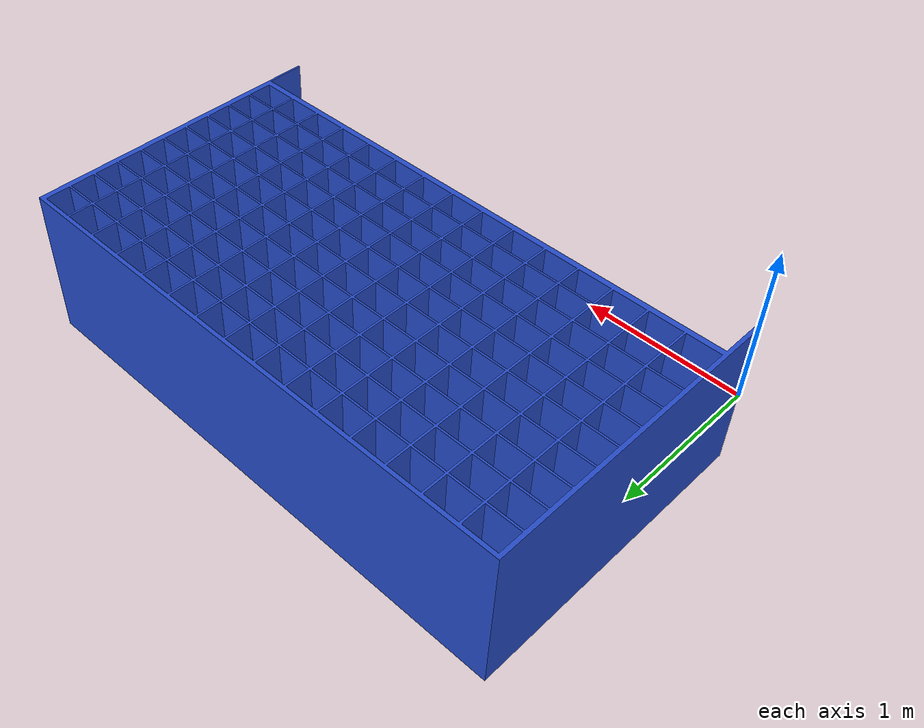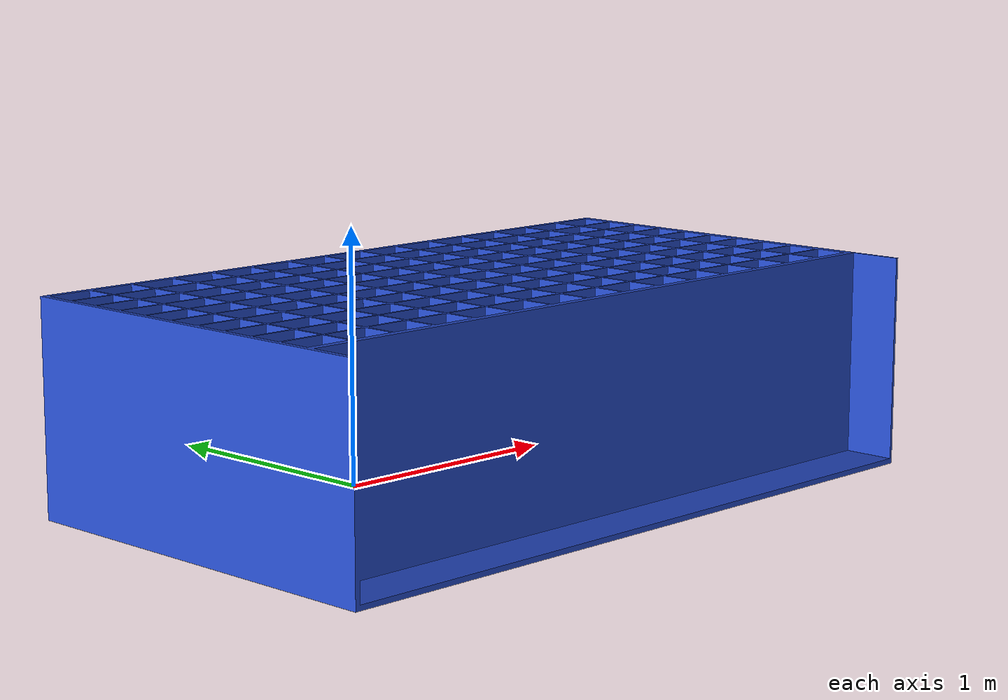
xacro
<?xml version="1.0"?>
<robot name="repisa" xmlns:xacro="http://www.ros.org/wiki/xacro">
<xacro:include filename="$(find dsrbot_description)/urdf/repisa.gazebo" />

    <link name="baseim"/>

    <link name="repisastl">
        <visual>
            <origin xyz="0 0 0.5" rpy="0 0 0"/>
			<geometry>
                <mesh filename="$(find dsrbot_description)/meshes/repisa.STL" scale="0.001 0.001 0.001"/>
			</geometry>
        </visual>
		<collision>
		      <origin xyz="1.75 1 0" rpy="0 0 0"/>
		      <geometry>
			    <box size="3.5 2 1"/>
		      </geometry>
        </collision>
		<inertial>
	        <origin xyz="0 0 0" rpy="0 0 0"/>
			    <mass value="1"/>
			    <inertia ixx="1" ixy="0" ixz="0"
				       iyy="1" iyz="0"
				       izz="1" />
		</inertial>
        <static>1</static>
    </link>

    <joint name="base_joint" type="fixed">
        <origin xyz="0 0 0" rpy="0 0 0"/>
        <parent link="baseim"/>
        <child link="repisastl"/>
    </joint>
</robot>
